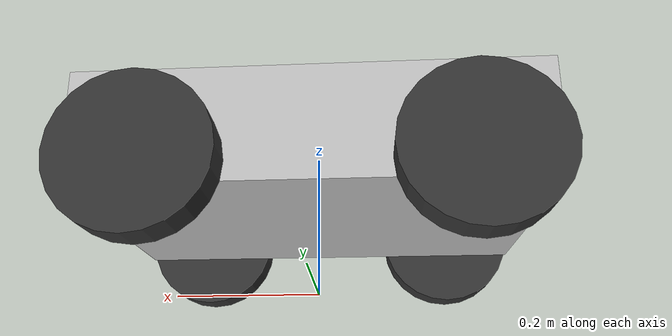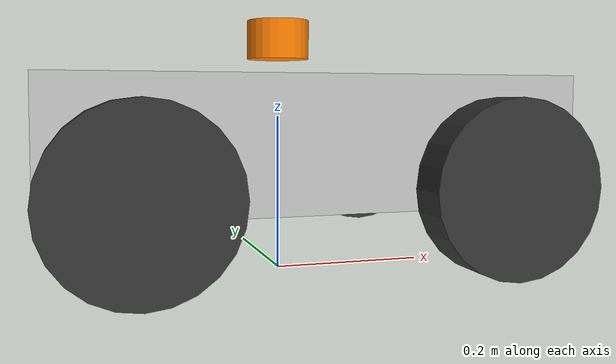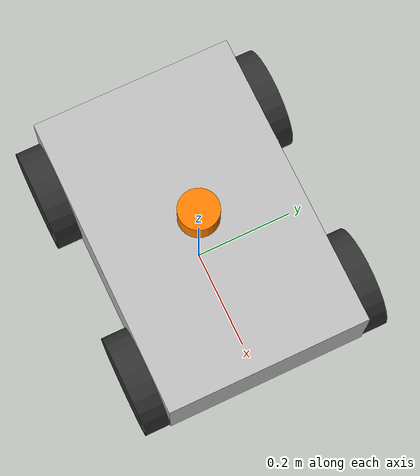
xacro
<?xml version="1.0"?>
<robot xmlns:xacro="http://www.ros.org/wiki/xacro" name="moon_rover">

  <!-- Include lidar macro -->
  <xacro:include filename="$(find moon_rover_sim)/urdf/lidar.urdf.xacro"/>

  <!-- Properties -->
  <xacro:property name="chassis_length" value="0.6"/>
  <xacro:property name="chassis_width" value="0.4"/>
  <xacro:property name="chassis_height" value="0.15"/>
  <xacro:property name="chassis_mass" value="10.0"/>

  <xacro:property name="wheel_radius" value="0.1"/>
  <xacro:property name="wheel_width" value="0.05"/>
  <xacro:property name="wheel_mass" value="1.0"/>
  <xacro:property name="wheel_offset_x" value="0.2"/>
  <xacro:property name="wheel_offset_y" value="0.225"/>
  <xacro:property name="wheel_offset_z" value="-0.05"/>

  <!-- Colors -->
  <material name="silver">
    <color rgba="0.75 0.75 0.75 1.0"/>
  </material>
  <material name="dark_grey">
    <color rgba="0.2 0.2 0.2 1.0"/>
  </material>
  <material name="orange">
    <color rgba="1.0 0.5 0.0 1.0"/>
  </material>

  <!-- Base footprint (on ground) -->
  <link name="base_footprint"/>

  <!-- Base link (chassis) -->
  <link name="base_link">
    <visual>
      <geometry>
        <box size="${chassis_length} ${chassis_width} ${chassis_height}"/>
      </geometry>
      <material name="silver"/>
    </visual>
    <collision>
      <geometry>
        <box size="${chassis_length} ${chassis_width} ${chassis_height}"/>
      </geometry>
    </collision>
    <inertial>
      <mass value="${chassis_mass}"/>
      <inertia ixx="${chassis_mass/12*(chassis_width*chassis_width + chassis_height*chassis_height)}"
               ixy="0" ixz="0"
               iyy="${chassis_mass/12*(chassis_length*chassis_length + chassis_height*chassis_height)}"
               iyz="0"
               izz="${chassis_mass/12*(chassis_length*chassis_length + chassis_width*chassis_width)}"/>
    </inertial>
  </link>

  <joint name="base_footprint_joint" type="fixed">
    <parent link="base_footprint"/>
    <child link="base_link"/>
    <origin xyz="0 0 ${wheel_radius + chassis_height/2}" rpy="0 0 0"/>
  </joint>

  <!-- Wheel macro -->
  <xacro:macro name="wheel" params="prefix x_reflect y_reflect">
    <link name="${prefix}_wheel">
      <visual>
        <geometry>
          <cylinder radius="${wheel_radius}" length="${wheel_width}"/>
        </geometry>
        <origin xyz="0 0 0" rpy="${pi/2} 0 0"/>
        <material name="dark_grey"/>
      </visual>
      <collision>
        <geometry>
          <cylinder radius="${wheel_radius}" length="${wheel_width}"/>
        </geometry>
        <origin xyz="0 0 0" rpy="${pi/2} 0 0"/>
      </collision>
      <inertial>
        <mass value="${wheel_mass}"/>
        <origin xyz="0 0 0" rpy="${pi/2} 0 0"/>
        <inertia ixx="${wheel_mass/12*(3*wheel_radius*wheel_radius + wheel_width*wheel_width)}"
                 ixy="0" ixz="0"
                 iyy="${wheel_mass/12*(3*wheel_radius*wheel_radius + wheel_width*wheel_width)}"
                 iyz="0"
                 izz="${wheel_mass/2*wheel_radius*wheel_radius}"/>
      </inertial>
    </link>

    <joint name="${prefix}_wheel_joint" type="continuous">
      <parent link="base_link"/>
      <child link="${prefix}_wheel"/>
      <origin xyz="${x_reflect*wheel_offset_x} ${y_reflect*wheel_offset_y} ${wheel_offset_z}" rpy="0 0 0"/>
      <axis xyz="0 1 0"/>
      <dynamics damping="0.2"/>
    </joint>
  </xacro:macro>

  <!-- Create four wheels -->
  <xacro:wheel prefix="front_left" x_reflect="1" y_reflect="1"/>
  <xacro:wheel prefix="front_right" x_reflect="1" y_reflect="-1"/>
  <xacro:wheel prefix="rear_left" x_reflect="-1" y_reflect="1"/>
  <xacro:wheel prefix="rear_right" x_reflect="-1" y_reflect="-1"/>

  <!-- Add lidar on top -->
  <xacro:lidar_sensor parent="base_link">
    <origin xyz="0 0 ${chassis_height/2 + 0.05}" rpy="0 0 0"/>
  </xacro:lidar_sensor>

  <!-- Gazebo colors -->
  <gazebo reference="base_link">
    <material>Gazebo/Silver</material>
  </gazebo>

  <gazebo reference="front_left_wheel">
    <material>Gazebo/DarkGrey</material>
    <mu1>1.0</mu1>
    <mu2>1.0</mu2>
  </gazebo>
  <gazebo reference="front_right_wheel">
    <material>Gazebo/DarkGrey</material>
    <mu1>1.0</mu1>
    <mu2>1.0</mu2>
  </gazebo>
  <gazebo reference="rear_left_wheel">
    <material>Gazebo/DarkGrey</material>
    <mu1>1.0</mu1>
    <mu2>1.0</mu2>
  </gazebo>
  <gazebo reference="rear_right_wheel">
    <material>Gazebo/DarkGrey</material>
    <mu1>1.0</mu1>
    <mu2>1.0</mu2>
  </gazebo>

  <!-- Differential drive plugin -->
  <gazebo>
    <plugin name="diff_drive" filename="libgazebo_ros_diff_drive.so">
      <ros>
        <namespace>/</namespace>
        <remapping>cmd_vel:=cmd_vel</remapping>
        <remapping>odom:=odom</remapping>
      </ros>

      <!-- Wheels - using front wheels for differential drive -->
      <left_joint>front_left_wheel_joint</left_joint>
      <right_joint>front_right_wheel_joint</right_joint>

      <!-- Wheel properties -->
      <wheel_separation>${wheel_offset_y * 2}</wheel_separation>
      <wheel_diameter>${wheel_radius * 2}</wheel_diameter>

      <!-- Limits -->
      <max_wheel_torque>20</max_wheel_torque>
      <max_wheel_acceleration>1.0</max_wheel_acceleration>

      <!-- Topics -->
      <command_topic>cmd_vel</command_topic>
      <odometry_topic>odom</odometry_topic>

      <!-- TF Publishing -->
      <publish_odom>true</publish_odom>
      <publish_odom_tf>true</publish_odom_tf>
      <publish_wheel_tf>false</publish_wheel_tf>

      <!-- Frames -->
      <odometry_frame>odom</odometry_frame>
      <robot_base_frame>base_footprint</robot_base_frame>

      <!-- Update rate -->
      <update_rate>30.0</update_rate>
    </plugin>
  </gazebo>

  <!-- Joint state publisher plugin -->
  <gazebo>
    <plugin name="joint_states" filename="libgazebo_ros_joint_state_publisher.so">
      <ros>
        <namespace>/</namespace>
      </ros>
      <joint_name>front_left_wheel_joint</joint_name>
      <joint_name>front_right_wheel_joint</joint_name>
      <joint_name>rear_left_wheel_joint</joint_name>
      <joint_name>rear_right_wheel_joint</joint_name>
      <update_rate>30</update_rate>
    </plugin>
  </gazebo>

</robot>

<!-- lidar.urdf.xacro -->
<robot xmlns:xacro="http://www.ros.org/wiki/xacro">

  <!-- Lidar sensor macro -->
  <xacro:macro name="lidar_sensor" params="parent *origin">

    <xacro:property name="lidar_radius" value="0.04"/>
    <xacro:property name="lidar_height" value="0.05"/>
    <xacro:property name="lidar_mass" value="0.2"/>

    <link name="lidar_link">
      <visual>
        <geometry>
          <cylinder radius="${lidar_radius}" length="${lidar_height}"/>
        </geometry>
        <material name="orange">
          <color rgba="1.0 0.5 0.0 1.0"/>
        </material>
      </visual>
      <collision>
        <geometry>
          <cylinder radius="${lidar_radius}" length="${lidar_height}"/>
        </geometry>
      </collision>
      <inertial>
        <mass value="${lidar_mass}"/>
        <inertia ixx="${lidar_mass/12*(3*lidar_radius*lidar_radius + lidar_height*lidar_height)}"
                 ixy="0" ixz="0"
                 iyy="${lidar_mass/12*(3*lidar_radius*lidar_radius + lidar_height*lidar_height)}"
                 iyz="0"
                 izz="${lidar_mass/2*lidar_radius*lidar_radius}"/>
      </inertial>
    </link>

    <joint name="lidar_joint" type="fixed">
      <parent link="${parent}"/>
      <child link="lidar_link"/>
      <xacro:insert_block name="origin"/>
    </joint>

    <!-- Gazebo lidar color -->
    <gazebo reference="lidar_link">
      <material>Gazebo/Orange</material>
    </gazebo>

    <!-- Gazebo lidar sensor plugin -->
    <gazebo reference="lidar_link">
      <sensor type="ray" name="lidar_sensor">
        <pose>0 0 0 0 0 0</pose>
        <visualize>true</visualize>
        <update_rate>10</update_rate>
        <ray>
          <scan>
            <horizontal>
              <samples>360</samples>
              <resolution>1</resolution>
              <min_angle>-3.14159</min_angle>
              <max_angle>3.14159</max_angle>
            </horizontal>
          </scan>
          <range>
            <min>0.15</min>
            <max>12.0</max>
            <resolution>0.01</resolution>
          </range>
          <noise>
            <type>gaussian</type>
            <mean>0.0</mean>
            <stddev>0.01</stddev>
          </noise>
        </ray>
        <plugin name="gazebo_ros_lidar" filename="libgazebo_ros_ray_sensor.so">
          <ros>
            <namespace>/</namespace>
            <remapping>~/out:=scan</remapping>
          </ros>
          <output_type>sensor_msgs/LaserScan</output_type>
          <frame_name>lidar_link</frame_name>
        </plugin>
      </sensor>
    </gazebo>

  </xacro:macro>

</robot>
